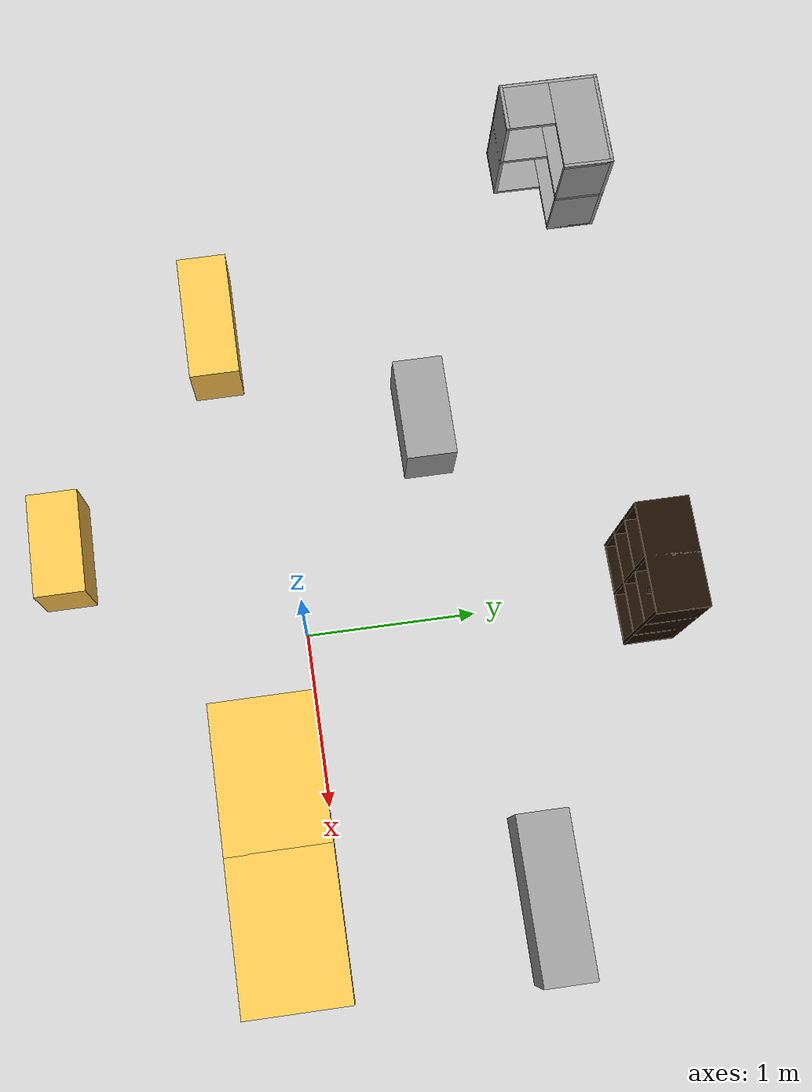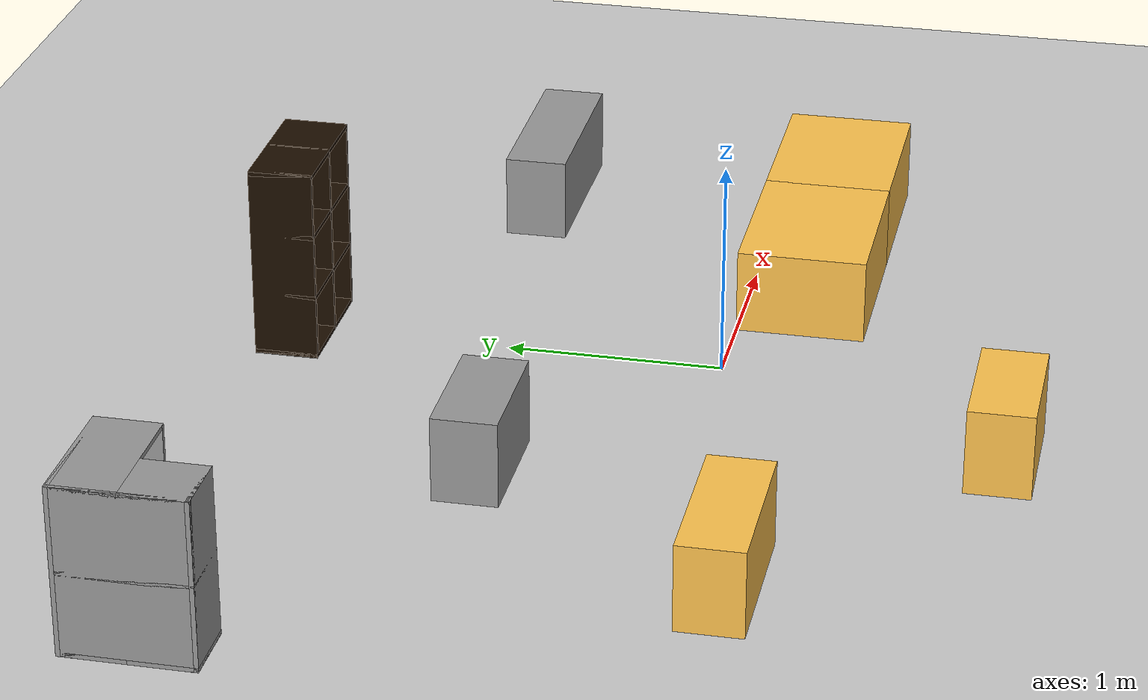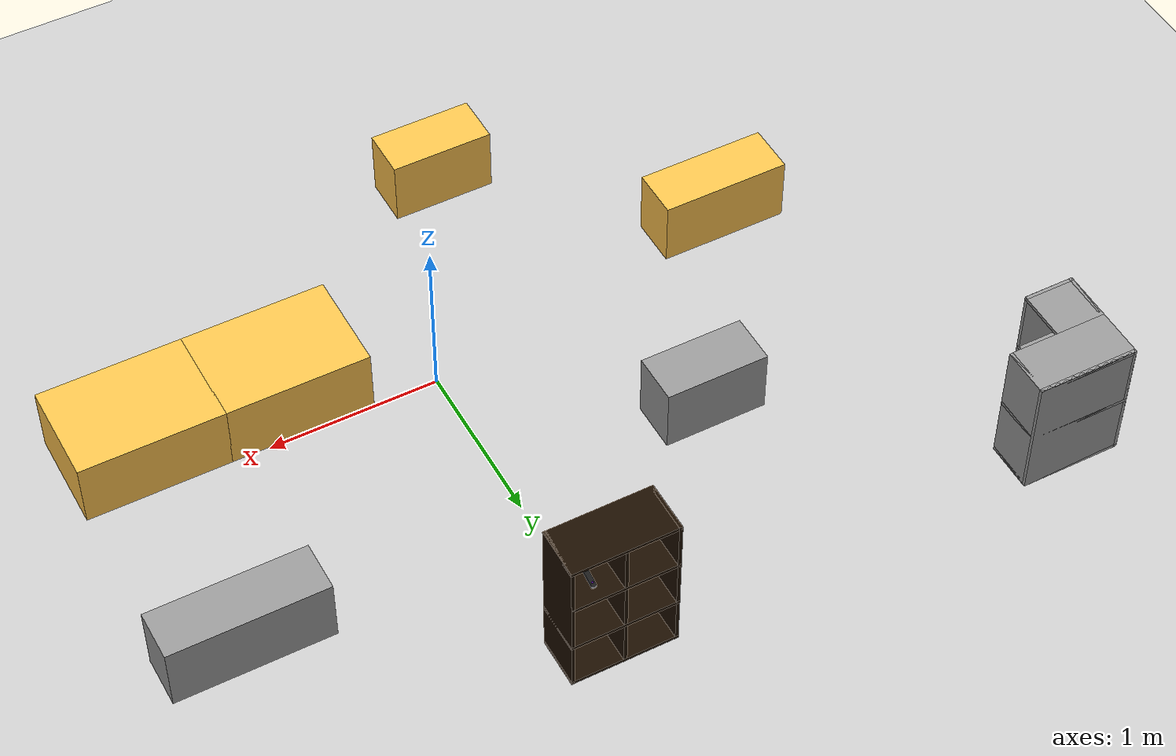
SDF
<sdf version="1.5">
 <world name="default">
  <scene><shadows>true</shadows></scene>
  <light name="sun" type="directional">
   <pose>0 0 10 0 -0 0</pose>
   <diffuse>0.8 0.8 0.8 1</diffuse>
   <specular>0.1 0.1 0.1 1</specular>
   <attenuation>
    <range>1000</range>
    <constant>0.9</constant>
    <linear>0.01</linear>
    <quadratic>0.001</quadratic>
   </attenuation>
   <direction>-0.5 0.5 -1</direction>
  </light>
  <physics type="ode">
   <max_step_size>0.001</max_step_size>
   <real_time_factor>1</real_time_factor>
   <real_time_update_rate>1000</real_time_update_rate>
   <gravity>0 0 -9.8</gravity>
  </physics>
  <include><uri>model://ground_plane</uri></include>
  <include><pose>-1.936710 -0.343286 0.013 0 0 -1.57</pose><uri>model://Box_15x30</uri></include>
  <include><pose>1.636 -0.3 0.013 0 0 0</pose><uri>model://Box_33x15</uri></include>
  <include><pose>0.8 -0.3 0.013 0 0 0</pose><uri>model://Box_33x15</uri></include>
  <include><pose>1.658951 1.141109 0.013 0 0 0</pose><uri>model://Box_36x15W</uri></include>
  <include><pose>0 1.986729 0.013002 0 0 0</pose><uri>model://6_Cube_StorageE</uri></include>
  <include><pose>-0.653226 -1.356719 0.013 0 0 0</pose><uri>model://Box_24x15M</uri></include>
  <include><pose>-1.184366 0.857670 0.013 0 0 0</pose><uri>model://Box_24x15W</uri></include>
  <include>
   <pose>-2.710050 1.858030 0.013 0 0 -1.574973</pose>
   <uri>model://Wall_Cabinet_Coin_24x30W</uri>
  </include>
  <include><pose>0.133016 1.972813 0.633002 0.00 0.00 -1.648960</pose><uri>model://Zed_dummy</uri></include>
 </world>
</sdf>

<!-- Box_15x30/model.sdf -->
<sdf version='1.6'>
  <model name='Box_15x30'>
    <link name='Wall'>
     <pose frame=''>0 0.0 0.1985 0 0 0</pose>
	<inertial>
	  <mass>5</mass>
	   <inertia>
	     <ixx>0.3089</ixx>
	     <iyy>0.1022</iyy>
	     <izz>0.2797</izz>
    	     <ixy>0</ixy>
	     <ixz>0</ixz>
	     <iyz>0</iyz>
	   </inertia>
	</inertial>
      <collision name='Wall_Collision'>
        <geometry>
          <box>
            <size>0.296 0.764 0.397</size>
          </box>
        </geometry>
      </collision>
      <visual name='Wall_Visual'>
        <geometry>
          <box>
            <size>0.296 0.764 0.397</size>
          </box>
        </geometry>
        <material>
          <script>
            <uri>file://media/materials/scripts/gazebo.material</uri>
            <name>Gazebo/Grey</name>
          </script>
          <ambient>1 0.764706 0.305882 1</ambient>
        </material>
      </visual>
     </link>

    <static>1</static>
  </model>
</sdf>

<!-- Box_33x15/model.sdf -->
<sdf version='1.6'>
  <model name='Box_33x15'>
    <link name='Wall'>
    <pose frame=''>0 0 0.1985 0 0 0</pose>
	<inertial>
	  <mass>5</mass>
	   <inertia>
	     <ixx>0.2157</ixx>
	     <iyy>0.3597</iyy>
	     <izz>0.4440</izz>
    	     <ixy>0</ixy>
	     <ixz>0</ixz>
	     <iyz>0</iyz>
	   </inertia>
	</inertial>
      <collision name='Wall_Collision'>
        <geometry>
          <box>
            <size>0.84 0.6 0.397 </size>
          </box>
        </geometry>
       </collision>
      <visual name='Wall_Visual'>
       <geometry>
          <box>
            <size>0.84 0.6 0.397 </size>
          </box>
        </geometry>
        <material>
          <script>
            <uri>file://media/materials/scripts/gazebo.material</uri>
            <name>Gazebo/Grey</name>
          </script>
          <ambient>1 0.764706 0.305882 1</ambient>
        </material>
      </visual>
     </link>

    <static>1</static>
  </model>
</sdf>

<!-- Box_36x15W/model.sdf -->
<sdf version='1.6'>
  <model name='Box_36x15W'>
     <link name='Wall'>
 	<pose frame=''>0 0 0.1985 0 0 0</pose>
	<inertial>
	  <mass>5</mass>
	   <inertia>
	     <ixx>0.1022</ixx>
	     <iyy>0.4107</iyy>
	     <izz>0.3815</izz>
    	     <ixy>0</ixy>
	     <ixz>0</ixz>
	     <iyz>0</iyz>
	   </inertia>
	</inertial>
      <collision name='Wall_Collision'>
        <geometry>
          <box>
            <size>0.91 0.296 0.397</size>
          </box>
        </geometry>
      </collision>
      <visual name='Wall_Visual'>
          <geometry>
          <box>
            <size>0.91 0.296 0.397</size>
          </box>
        </geometry>
        <material>
          <script>
            <uri>file://media/materials/scripts/gazebo.material</uri>
            <name>Gazebo/Grey</name>
          </script>
          <ambient>1 1 1 1</ambient>
        </material>
      </visual>
    </link>

    <static>1</static>
  </model>
</sdf>

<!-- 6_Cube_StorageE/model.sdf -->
<sdf version='1.6'>
  <model name='6_Cube_StorageE'>

    <link name='Wall_0'>
    <pose frame=''>0 0 0.01 0 -0 0</pose>
	<inertial>
	  <mass>1.6201</mass>
	   <inertia>
	     <ixx>0.0119</ixx>
	     <iyy>0.0631</iyy>
	     <izz>0.0513</izz>
    	     <ixy>0</ixy>
	     <ixz>0</ixz>
	     <iyz>0</iyz>
	   </inertia>
	</inertial>
      <collision name='Wall_0_Collision'>
        <geometry>
          <box>
            <size>0.616 0.296 0.02</size>
          </box>
        </geometry>
      </collision>
      <visual name='Wall_0_Visual'>
        <geometry>
          <box>
            <size>0.616 0.296 0.02</size>
          </box>
        </geometry>
        <material>
          <script>
            <uri>file://media/materials/scripts/gazebo.material</uri>
            <name>Gazebo/Grey</name>
          </script>
          <ambient>0.105882 0.0509804 0 1</ambient>
        </material>
      </visual>
   </link>

     <joint type="fixed" name="0_2">
      <pose frame=''>-0.308 0 0 0 0 0</pose>
         <parent>Wall_2</parent>
  	 <child>Wall_0</child>
	 <axis>
	   <xyz>1 0 0</xyz>
	 </axis>
       </joint>

  <joint type="fixed" name="0_12">
      <pose frame=''>0 0 0 0 0 0</pose>
         <parent>Wall_12</parent>
  	 <child>Wall_0</child>
	 <axis>
	   <xyz>0 0 1</xyz>
	 </axis>
       </joint>

  <joint type="fixed" name="0_4">
      <pose frame=''>0.308 0 0 0 0 0</pose>
         <parent>Wall_4</parent>
  	 <child>Wall_0</child>
	 <axis>
	   <xyz>1 0 0</xyz>
	 </axis>
       </joint>

    <link name='Wall_10'>
      <pose frame=''>0 0 0.610 0 0 0</pose>
	<inertial>
	  <mass>1.6201</mass>
	   <inertia>
	     <ixx>0.0119</ixx>
	     <iyy>0.0631</iyy>
	     <izz>0.0513</izz>
    	     <ixy>0</ixy>
	     <ixz>0</ixz>
	     <iyz>0</iyz>
	   </inertia>
	</inertial>
      <collision name='Wall_10_Collision'>
        <geometry>
          <box>
            <size>0.616 0.296 0.02 </size>
          </box>
        </geometry>
      </collision>
      <visual name='Wall_10_Visual'>
          <geometry>
          <box>
            <size>0.616 0.296 0.02</size>
          </box>
        </geometry>
        <material>
          <script>
            <uri>file://media/materials/scripts/gazebo.material</uri>
            <name>Gazebo/Grey</name>
          </script>
          <ambient>0.105882 0.0509804 0 1</ambient>
        </material>
      </visual>
    </link>

     <joint type="fixed" name="10_2">
      <pose frame=''>-0.308 0 0 0 0 0</pose>
         <parent>Wall_2</parent>
  	 <child>Wall_10</child>
	 <axis>
	   <xyz>1 0 0</xyz>
	 </axis>
       </joint>

  <joint type="fixed" name="10_12">
      <pose frame=''>0 0 0 0 0 0</pose>
         <parent>Wall_12</parent>
  	 <child>Wall_10</child>
	 <axis>
	   <xyz>0 0 1</xyz>
	 </axis>
       </joint>

  <joint type="fixed" name="10_4">
      <pose frame=''>0.308 0 0 0 0 0</pose>
         <parent>Wall_4</parent>
  	 <child>Wall_10</child>
	 <axis>
	   <xyz>1 0 0</xyz>
	 </axis>
       </joint>

    <link name='Wall_12'>
  <pose frame=''>0 0 0.4575 0 0 0</pose>
	<inertial>
	  <mass>2.4065</mass>
	   <inertia>
	     <ixx>0.0177</ixx>
	     <iyy>0.1855</iyy>
	     <izz>0.1680</izz>
    	     <ixy>0</ixy>
	     <ixz>0</ixz>
	     <iyz>0</iyz>
	   </inertia>
	</inertial>
      <collision name='Wall_12_Collision'>
        <geometry>
          <box>
            <size>0.02 0.296 0.915</size>
          </box>
        </geometry>
      </collision>
      <visual name='Wall_12_Visual'>
         <geometry>
          <box>
            <size>0.02 0.296 0.915</size>
          </box>
        </geometry>
        <material>
          <script>
            <uri>file://media/materials/scripts/gazebo.material</uri>
            <name>Gazebo/Grey</name>
          </script>
          <ambient>0.105882 0.0509804 0 1</ambient>
        </material>
      </visual>
    </link>

    <link name='Wall_2'>
      <pose frame=''>-0.298 0 0.4575 0 0 0</pose>
	<inertial>
	  <mass>2.4065</mass>
	   <inertia>
	     <ixx>0.0177</ixx>
	     <iyy>0.1855</iyy>
	     <izz>0.1680</izz>
    	     <ixy>0</ixy>
	     <ixz>0</ixz>
	     <iyz>0</iyz>
	   </inertia>
	</inertial>
      <collision name='Wall_2_Collision'>
        <geometry>
          <box>
            <size>0.02 0.296 0.915</size>
          </box>
        </geometry>
      </collision>
      <visual name='Wall_2_Visual'>
        <geometry>
          <box>
            <size>0.02 0.296 0.915</size>
          </box>
        </geometry>
        <material>
          <script>
            <uri>file://media/materials/scripts/gazebo.material</uri>
            <name>Gazebo/Grey</name>
          </script>
          <ambient>0.105882 0.0509804 0 1</ambient>
        </material>
      </visual>
    </link>

    <link name='Wall_4'>
      <pose frame=''>0.298 0 0.4575 0 0 0</pose>
	<inertial>
	  <mass>2.4065</mass>
	   <inertia>
	     <ixx>0.0177</ixx>
	     <iyy>0.1855</iyy>
	     <izz>0.1680</izz>
    	     <ixy>0</ixy>
	     <ixz>0</ixz>
	     <iyz>0</iyz>
	   </inertia>
	</inertial>
      <collision name='Wall_4_Collision'>
        <geometry>
          <box>
            <size>0.02 0.296 0.915</size>
          </box>
        </geometry>
      </collision>
      <visual name='Wall_4_Visual'>
        <geometry>
          <box>
            <size>0.02 0.296 0.915</size>
          </box>
        </geometry>
        <material>
          <script>
            <uri>file://media/materials/scripts/gazebo.material</uri>
            <name>Gazebo/Grey</name>
          </script>
          <ambient>0.105882 0.0509804 0 1</ambient>
        </material>
      </visual>
    </link>

    <link name='Wall_6'>
     <pose frame=''>0 0 0.905 0 0 0</pose>
	<inertial>
	  <mass>1.6201</mass>
	   <inertia>
	     <ixx>0.0119</ixx>
	     <iyy>0.0631</iyy>
	     <izz>0.0513</izz>
    	     <ixy>0</ixy>
	     <ixz>0</ixz>
	     <iyz>0</iyz>
	   </inertia>
	</inertial>
      <collision name='Wall_6_Collision'>
        <geometry>
          <box>
            <size>0.616 0.296 0.02</size>
          </box>
        </geometry>
       </collision>
      <visual name='Wall_6_Visual'>
        <geometry>
          <box>
            <size>0.616 0.296 0.02</size>
          </box>
        </geometry>
        <material>
          <script>
            <uri>file://media/materials/scripts/gazebo.material</uri>
            <name>Gazebo/Grey</name>
          </script>
          <ambient>0.105882 0.0509804 0 1</ambient>
        </material>
      </visual>
     </link>

     <joint type="fixed" name="6_2">
      <pose frame=''>-0.308 0 0 0 0 0</pose>
         <parent>Wall_2</parent>
  	 <child>Wall_6</child>
	 <axis>
	   <xyz>2 0 0</xyz>
	 </axis>
       </joint>

  <joint type="fixed" name="6_12">
      <pose frame=''>0 0 0 0 0 0</pose>
         <parent>Wall_12</parent>
  	 <child>Wall_6</child>
	 <axis>
	   <xyz>0 0 1</xyz>
	 </axis>
       </joint>

  <joint type="fixed" name="6_4">
      <pose frame=''>0.308 0 0 0 0 0</pose>
         <parent>Wall_4</parent>
  	 <child>Wall_6</child>
	 <axis>
	   <xyz>1 0 0</xyz>
	 </axis>
       </joint>

    <link name='Wall_8'>
    <pose frame=''>0 0 0.305 0 0 0</pose>
	<inertial>
	  <mass>1.6201</mass>
	   <inertia>
	     <ixx>0.0119</ixx>
	     <iyy>0.0631</iyy>
	     <izz>0.0513</izz>
    	     <ixy>0</ixy>
	     <ixz>0</ixz>
	     <iyz>0</iyz>
	   </inertia>
	</inertial>
      <collision name='Wall_8_Collision'>
        <geometry>
          <box>
            <size>0.616 0.296 0.02</size>
          </box>
        </geometry>
       </collision>
      <visual name='Wall_8_Visual'>
        <geometry>
          <box>
            <size>0.616 0.296 0.02</size>
          </box>
        </geometry>
        <material>
          <script>
            <uri>file://media/materials/scripts/gazebo.material</uri>
            <name>Gazebo/Grey</name>
          </script>
          <ambient>0.105882 0.0509804 0 1</ambient>
        </material>
      </visual>
      </link>

     <joint type="fixed" name="8_2">
      <pose frame=''>-0.308 0 0 0 0 0</pose>
         <parent>Wall_2</parent>
  	 <child>Wall_8</child>
	 <axis>
	   <xyz>1 0 0</xyz>
	 </axis>
       </joint>

  <joint type="fixed" name="8_12">
      <pose frame=''>0 0 0 0 0 0</pose>
         <parent>Wall_12</parent>
  	 <child>Wall_8</child>
	 <axis>
	   <xyz>0 0 1</xyz>
	 </axis>
       </joint>

  <joint type="fixed" name="8_4">
      <pose frame=''>0.308 0 0 0 0 0</pose>
         <parent>Wall_4</parent>
  	 <child>Wall_8</child>
	 <axis>
	   <xyz>1 0 0</xyz>
	 </axis>
       </joint>

    <static>1</static>
  </model>
</sdf>

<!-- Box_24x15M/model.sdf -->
<sdf version='1.6'>
  <model name='Box_24x15M'>
    <link name='Wall'>
	<pose frame=''>0 0 0.1985 0 -0 0</pose>
	<inertial>
	  <mass>5</mass>
	   <inertia>
	     <ixx>0.1022</ixx>
	     <iyy>0.2197</iyy>
	     <izz>0.1905</izz>
    	     <ixy>0</ixy>
	     <ixz>0</ixz>
	     <iyz>0</iyz>
	   </inertia>
	</inertial>
      <collision name='Wall_Collision'>
        <geometry>
          <box>
            <size>0.608 0.296 0.397 </size>
          </box>
        </geometry>

      </collision>
      <visual name='Wall_Visual'>

        <geometry>
          <box>
            <size>0.608 0.296 0.397</size>
          </box>
        </geometry>
       <material>
          <script>
            <uri>file://media/materials/scripts/gazebo.material</uri>
            <name>Gazebo/Grey</name>
          </script>
          <ambient>1 0.764706 0.305882 1</ambient>
        </material>
      </visual>
    </link>

    <static>1</static>
  </model>
</sdf>

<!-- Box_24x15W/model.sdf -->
<sdf version='1.6'>
  <model name='Box_24x15W'>
    <link name='Wall'>
	<pose frame=''>0 0 0.1985 0 0 0</pose>
	<inertial>
	  <mass>5</mass>
	   <inertia>
	     <ixx>0.1022</ixx>
	     <iyy>0.2197</iyy>
	     <izz>0.1905</izz>
    	     <ixy>0</ixy>
	     <ixz>0</ixz>
	     <iyz>0</iyz>
	   </inertia>
	</inertial>
      <collision name='Wall_Collision'>
        <geometry>
          <box>
            <size>0.608 0.296 0.397 </size>
          </box>
        </geometry>

      </collision>
      <visual name='Wall_Visual'>

        <geometry>
          <box>
            <size>0.608 0.296 0.397</size>
          </box>
        </geometry>
        <material>
          <script>
            <uri>file://media/materials/scripts/gazebo.material</uri>
            <name>Gazebo/Grey</name>
          </script>
          <ambient>1 1 1 1</ambient>
        </material>
      </visual>
     </link>

    <static>1</static>
  </model>
</sdf>

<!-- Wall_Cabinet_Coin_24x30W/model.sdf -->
<sdf version='1.6'>
   <model name='Wall_Cabinet_Coin_24x30W'>
    <link name='Wall_10'>
     <pose frame=''>0.286 -0.148 0.384 0 0 0</pose>
	<inertial>
	  <mass>2.1259</mass>
	   <inertia>
	     <ixx>0.0158</ixx>
	     <iyy>0.1202</iyy>
	     <izz>0.1046</izz>
    	     <ixy>0</ixy>
	     <ixz>0</ixz>
	     <iyz>0</iyz>
	   </inertia>
	</inertial>
      <collision name='Wall_10_Collision'>
        <geometry>
          <box>
            <size> 0.02 0.296 0.768</size>
          </box>
        </geometry>
      </collision>
      <visual name='Wall_10_Visual'>
        <geometry>
          <box>
            <size>0.02 0.296 0.768</size>
          </box>
        </geometry>
        <material>
          <script>
            <uri>file://media/materials/scripts/gazebo.material</uri>
            <name>Gazebo/Grey</name>
          </script>
          <ambient>1 1 1 1</ambient>
        </material>
      </visual>
    </link>

     <joint type="fixed" name="10_16">
      <pose frame=''> 0 0 -0.374 0 0 0</pose>
         <parent>Wall_16</parent>
  	 <child>Wall_10</child>
	 <axis>
	   <xyz>1 0 0</xyz>
	 </axis>
       </joint>
   <joint type="fixed" name="10_14">
          <pose frame=''>0 0 0 0 0 0</pose>
         <parent>Wall_14</parent>
  	 <child>Wall_10</child>
	 <axis>
	   <xyz>1 0 0</xyz>
	 </axis>
       </joint>

   <joint type="fixed" name="10_12">
      <pose frame=''>0 0 0.374 0 0 0</pose>
         <parent>Wall_12</parent>
  	 <child>Wall_10</child>
	 <axis>
	   <xyz>1 0 0</xyz>
	 </axis>
       </joint>

   <joint type="fixed" name="10_29">
      <pose frame=''>0 -0.148 0 0 0 0</pose>
         <parent>Wall_29</parent>
  	 <child>Wall_10</child>
	 <axis>
	   <xyz>1 0 0</xyz>
	 </axis>
       </joint>

    <link name='Wall_12'>
   <pose frame=''>0.148 -0.148 0.758 0 0 0</pose>
	<inertial>
	  <mass>0.8802</mass>
	   <inertia>
	     <ixx>0.0065</ixx>
	     <iyy>0.0139</iyy>
	     <izz>0.0074</izz>
    	     <ixy>0</ixy>
	     <ixz>0</ixz>
	     <iyz>0</iyz>
	   </inertia>
	</inertial>
      <collision name='Wall_12_Collision'>
        <geometry>
          <box>
            <size>0.296 0.296 0.02</size>
          </box>
        </geometry>
      </collision>
      <visual name='Wall_12_Visual'>
        <geometry>
          <box>
            <size>0.296 0.296 0.02</size>
          </box>
        </geometry>
        <material>
          <script>
            <uri>file://media/materials/scripts/gazebo.material</uri>
            <name>Gazebo/Grey</name>
          </script>
          <ambient>1 1 1 1</ambient>
        </material>
      </visual>
     </link>

   <joint type="fixed" name="12_29">
      <pose frame=''>0 -0.148 0 0 0 0</pose>
         <parent>Wall_29</parent>
  	 <child>Wall_12</child>
	 <axis>
	   <xyz>0 0 1</xyz>
	 </axis>
       </joint>

    <link name='Wall_14'>
      <pose frame=''>0.148 -0.148 0.384 0 0 0</pose>
	<inertial>
	  <mass>0.8802</mass>
	   <inertia>
	     <ixx>0.0065</ixx>
	     <iyy>0.0139</iyy>
	     <izz>0.0074</izz>
    	     <ixy>0</ixy>
	     <ixz>0</ixz>
	     <iyz>0</iyz>
	   </inertia>
	</inertial>
      <collision name='Wall_14_Collision'>
        <geometry>
          <box>
            <size>0.296 0.296 0.02</size>
          </box>
        </geometry>
      </collision>
      <visual name='Wall_14_Visual'>
        <geometry>
          <box>
            <size>0.296 0.296 0.02</size>
          </box>
        </geometry>
        <material>
          <script>
            <uri>file://media/materials/scripts/gazebo.material</uri>
            <name>Gazebo/Grey</name>
          </script>
          <ambient>1 1 1 1</ambient>
        </material>
      </visual>
    </link>

   <joint type="fixed" name="14_29">
      <pose frame=''>0 -0.148 0 0 0 0</pose>
         <parent>Wall_29</parent>
  	 <child>Wall_14</child>
	 <axis>
	   <xyz>0 1 0</xyz>
	 </axis>
       </joint>

    <link name='Wall_16'>
      <pose frame=''>0.148 -0.148 0.01 0 0 0</pose>
	<inertial>
	  <mass>0.8802</mass>
	   <inertia>
	     <ixx>0.0065</ixx>
	     <iyy>0.0139</iyy>
	     <izz>0.0074</izz>
    	     <ixy>0</ixy>
	     <ixz>0</ixz>
	     <iyz>0</iyz>
	   </inertia>
	</inertial>
      <collision name='Wall_16_Collision'>
        <geometry>
          <box>
            <size>0.296 0.296 0.02 </size>
          </box>
        </geometry>
       </collision>
      <visual name='Wall_16_Visual'>
         <geometry>
          <box>
            <size>0.296 0.296 0.02</size>
          </box>
        </geometry>
        <material>
          <script>
            <uri>file://media/materials/scripts/gazebo.material</uri>
            <name>Gazebo/Grey</name>
          </script>
          <ambient>1 1 1 1</ambient>
        </material>
      </visual>
    </link>

   <joint type="fixed" name="16_29">
      <pose frame=''>0  -0.148 0 0 0 0</pose>
         <parent>Wall_29</parent>
  	 <child>Wall_16</child>
	 <axis>
	   <xyz>0 1 0</xyz>
	 </axis>
       </joint>

    <link name='Wall_18'>
      <pose frame=''>-0.148 0 0.01 0 0 0</pose>
	<inertial>
	  <mass>1.6525</mass>
	   <inertia>
	     <ixx>0.0491</ixx>
	     <iyy>0.0613</iyy>
	     <izz>0.0123</izz>
    	     <ixy>0</ixy>
	     <ixz>0</ixz>
	     <iyz>0</iyz>
	   </inertia>
	</inertial>
      <collision name='Wall_18_Collision'>
        <geometry>
          <box>
            <size>0.296 0.592 0.02</size>
          </box>
        </geometry>
        </collision>
      <visual name='Wall_18_Visual'>
        <geometry>
          <box>
            <size>0.296 0.592 0.02</size>
          </box>
        </geometry>
        <material>
          <script>
            <uri>file://media/materials/scripts/gazebo.material</uri>
            <name>Gazebo/Grey</name>
          </script>
          <ambient>1 1 1 1</ambient>
        </material>
      </visual>
    </link>

  <joint type="fixed" name="18_16">
      <pose frame=''> 0.148 -0.148 0 0 0 0</pose>
         <parent>Wall_16</parent>
  	 <child>Wall_18</child>
	 <axis>
	   <xyz>1 0 0</xyz>
	 </axis>
       </joint>

   <joint type="fixed" name="18_29">
          <pose frame=''>0 -0.296 0 0 0 0</pose>
         <parent>Wall_29</parent>
  	 <child>Wall_18</child>
	 <axis>
	   <xyz>0 1 0</xyz>
	 </axis>
       </joint>

   <joint type="fixed" name="18_27">
      <pose frame=''>-0.148 0 0 0 0 0</pose>
         <parent>Wall_27</parent>
  	 <child>Wall_18</child>
	 <axis>
	   <xyz>1 0 0</xyz>
	 </axis>
       </joint>

   <joint type="fixed" name="18_30">
      <pose frame=''>0 0.296 0 0 0 0</pose>
         <parent>Wall_30</parent>
  	 <child>Wall_18</child>
	 <axis>
	   <xyz>0 1 0</xyz>
	 </axis>
       </joint>

    <link name='Wall_20'>
      <pose frame=''>-0.148 0 0.384 0 0 0</pose>
	<inertial>
	  <mass>1.6525</mass>
	   <inertia>
	     <ixx>0.0491</ixx>
	     <iyy>0.0613</iyy>
	     <izz>0.0123</izz>
    	     <ixy>0</ixy>
	     <ixz>0</ixz>
	     <iyz>0</iyz>
	   </inertia>
	</inertial>
      <collision name='Wall_20_Collision'>
        <geometry>
          <box>
            <size>0.296 0.592 0.02</size>
          </box>
        </geometry>
      </collision>
      <visual name='Wall_20_Visual'>
        <geometry>
          <box>
            <size>0.296 0.592 0.02</size>
          </box>
        </geometry>
        <material>
          <script>
            <uri>file://media/materials/scripts/gazebo.material</uri>
            <name>Gazebo/Grey</name>
          </script>
          <ambient>1 1 1 1</ambient>
        </material>
      </visual>
    </link>

<joint type="fixed" name="20_14">
      <pose frame=''> 0.148 -0.148 0 0 0 0</pose>
         <parent>Wall_14</parent>
  	 <child>Wall_20</child>
	 <axis>
	   <xyz>1 0 0</xyz>
	 </axis>
       </joint>

   <joint type="fixed" name="20_29">
          <pose frame=''>0  -0.296 0 0 0 0</pose>
         <parent>Wall_29</parent>
  	 <child>Wall_20</child>
	 <axis>
	   <xyz>0 1 0</xyz>
	 </axis>
       </joint>

   <joint type="fixed" name="20_27">
      <pose frame=''>-0.148 0 0 0 0 0</pose>
         <parent>Wall_27</parent>
  	 <child>Wall_20</child>
	 <axis>
	   <xyz>1 0 0</xyz>
	 </axis>
       </joint>

   <joint type="fixed" name="20_30">
      <pose frame=''>0 0.296 0 0 0 0</pose>
         <parent>Wall_30</parent>
  	 <child>Wall_20</child>
	 <axis>
	   <xyz>0 1 0</xyz>
	 </axis>
       </joint>

    <link name='Wall_22'>
      <pose frame=''>-0.148 0 0.758 0 0 0</pose>
	<inertial>
	  <mass>1.6525</mass>
	   <inertia>
	     <ixx>0.0491</ixx>
	     <iyy>0.0613</iyy>
	     <izz>0.0123</izz>
    	     <ixy>0</ixy>
	     <ixz>0</ixz>
	     <iyz>0</iyz>
	   </inertia>
	</inertial>
      <collision name='Wall_22_Collision'>
        <geometry>
          <box>
            <size>0.296 0.592 0.02</size>
          </box>
        </geometry>
      </collision>
      <visual name='Wall_22_Visual'>
        <geometry>
          <box>
            <size>0.296 0.592 0.02</size>
          </box>
        </geometry>
        <material>
          <script>
            <uri>file://media/materials/scripts/gazebo.material</uri>
            <name>Gazebo/Grey</name>
          </script>
          <ambient>1 1 1 1</ambient>
        </material>
      </visual>
    </link>

<joint type="fixed" name="22_12">
      <pose frame=''> 0.148 -0.148 0 0 0 0</pose>
         <parent>Wall_12</parent>
  	 <child>Wall_22</child>
	 <axis>
	   <xyz>1 0 0</xyz>
	 </axis>
       </joint>

   <joint type="fixed" name="22_29">
          <pose frame=''>0 -0.296 0 0 0 0</pose>
         <parent>Wall_29</parent>
  	 <child>Wall_22</child>
	 <axis>
	   <xyz>0 1 0</xyz>
	 </axis>
       </joint>

   <joint type="fixed" name="22_27">
      <pose frame=''>-0.148 0 0 0 0 0</pose>
         <parent>Wall_27</parent>
  	 <child>Wall_22</child>
	 <axis>
	   <xyz>1 0 0</xyz>
	 </axis>
       </joint>

   <joint type="fixed" name="22_30">
      <pose frame=''>0 0.296 0 0 0 0</pose>
         <parent>Wall_30</parent>
  	 <child>Wall_22</child>
	 <axis>
	   <xyz>0 1 0</xyz>
	 </axis>
       </joint>

    <link name='Wall_27'>
      <pose frame=''>-0.286 0 0.384 0 0 0</pose>
	<inertial>
	  <mass>4.2589</mass>
	   <inertia>
	     <ixx>0.1266</ixx>
	     <iyy>0.3358</iyy>
	     <izz>0.2095</izz>
    	     <ixy>0</ixy>
	     <ixz>0</ixz>
	     <iyz>0</iyz>
	   </inertia>
	</inertial>
      <collision name='Wall_27_Collision'>
        <geometry>
          <box>
            <size>0.02 0.592 0.768</size>
          </box>
        </geometry>
      </collision>
      <visual name='Wall_27_Visual'>
        <geometry>
          <box>
            <size>0.02 0.592 0.768</size>
          </box>
        </geometry>
        <material>
          <script>
            <uri>file://media/materials/scripts/gazebo.material</uri>
            <name>Gazebo/Grey</name>
          </script>
          <ambient>1 1 1 1</ambient>
        </material>
      </visual>
    </link>

   <joint type="fixed" name="27_30">
      <pose frame=''>0 0.296 0 0 0 0</pose>
         <parent>Wall_30</parent>
  	 <child>Wall_27</child>
	 <axis>
	   <xyz>0 1 0</xyz>
	 </axis>
       </joint>

    <link name='Wall_29'>
     <pose frame=''>0 -0.286 0.384 0 0 0</pose>
	<inertial>
	  <mass>4.3176</mass>
	   <inertia>
	     <ixx>0.1340</ixx>
	     <iyy>0.2091</iyy>
	     <izz>0.3428</izz>
    	     <ixy>0</ixy>
	     <ixz>0</ixz>
	     <iyz>0</iyz>
	   </inertia>
	</inertial>
      <collision name='Wall_29_Collision'>
        <geometry>
          <box>
            <size> 0.592 0.02 0.768</size>
          </box>
        </geometry>
       </collision>
      <visual name='Wall_29_Visual'>
         <geometry>
          <box>
            <size>0.592 0.02 0.768</size>
          </box>
        </geometry>
        <material>
          <script>
            <uri>file://media/materials/scripts/gazebo.material</uri>
            <name>Gazebo/Grey</name>
          </script>
          <ambient>1 1 1 1</ambient>
        </material>
      </visual>
     </link>

 <link name='Wall_30'>
      <pose frame=''>-0.148 0.286 0.384 0 0 0</pose>
	<inertial>
	  <mass>2.1093</mass>
	   <inertia>
	     <ixx>0.1021</ixx>
	     <iyy>0.0157</iyy>
	     <izz>0.1177</izz>
    	     <ixy>0</ixy>
	     <ixz>0</ixz>
	     <iyz>0</iyz>
	   </inertia>
	</inertial>
      <collision name='Wall_30_Collision'>
        <geometry>
          <box>
            <size>0.296  0.02 0.768</size>
          </box>
        </geometry>
       </collision>
      <visual name='Wall_30_Visual'>
        <geometry>
          <box>
            <size>0.296  0.02 0.768</size>
          </box>
        </geometry>
        <material>
          <script>
            <uri>file://media/materials/scripts/gazebo.material</uri>
            <name>Gazebo/Grey</name>
          </script>
          <ambient>1 1 1 1</ambient>
        </material>
      </visual>
    </link>

    <static>1</static>
  </model>
</sdf>

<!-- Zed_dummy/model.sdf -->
<sdf version='1.5'>
  <model name='Zed_dummy'>
  <pose>0 0 0.008247 -1.57 0 -1.57</pose>
    <link name='frame'>
<inertial>
 	 <mass>0.342</mass>
	   <inertia>
	     <ixx>0.000056687</ixx>
	     <iyy>0.00089846</iyy>
	     <izz>0.00090385</izz>
    	     <ixy>0</ixy>
	     <ixz>0</ixz>
	     <iyz>0</iyz>
	   </inertia>
</inertial>
	<pose frame=''>0 0.008 -0.018575 0 -0 0</pose>
      <visual name='visual'>
         <geometry>
          <mesh>
            <uri>model://Zed_dummy/meshes/frame.dae</uri>
            <scale>1 1 1</scale>
          </mesh>
        </geometry>
     <material>
          <script>
            <uri>model://Zed_dummy/materials/scripts</uri>
            <uri>model://Zed_dummy/materials/textures</uri>
            <name>silver_zed</name>
          </script>
        </material>
        <cast_shadows>1</cast_shadows>
        <transparency>0</transparency>
      </visual>

      <collision name='collision'>
	<pose frame=''>0 -0.008 0.017575 0 -0 0</pose>
       	  <geometry>
	    <box>
	      <size> 0.175 0.029 0.035 </size>
	    </box>
	  </geometry>
       </collision>
    </link>

    <link name='lenses'>
      <pose frame=''>0 0.008 -0.018575 0 -0 0</pose>
 	<inertial>
	<pose frame=''>0 -0.005 0.015 0 -0 0</pose>
	  <mass>0.00001</mass>
	   <inertia>
	     <ixx>0</ixx>
	     <iyy>0</iyy>
	     <izz>0</izz>
    	     <ixy>0</ixy>
	     <ixz>0</ixz>
	     <iyz>0</iyz>
	   </inertia>
	</inertial>
        <visual name='visual'>
              <geometry>
          <mesh>
            <uri>model://Zed_dummy/meshes/lenses.dae</uri>
            <scale>1 1 1</scale>
          </mesh>
        </geometry>
             <material>
          <lighting>1</lighting>
            <ambient>0.25 0 0.5 1</ambient>
          <diffuse>0.45 0 0.9 1</diffuse>
          <specular>0.01 0.01 0.01 1</specular>
          <emissive>0 0 0 1</emissive>
        </material>
        <cast_shadows>1</cast_shadows>
        <transparency>0.5</transparency>
      </visual>
      <collision name='collision'>
        <geometry>
    	 <box>
	      <size> 0.0001 0.0001 0.0001 </size>
	    </box>
        </geometry>
       </collision>

    </link>
    <link name='panel_up'>
     <pose frame=''>0 0.008 0.035727 0 -0 0</pose>
      <inertial>
	<pose frame=''>0 -0.005 -0.02 0 -0 0</pose>
	  <mass>0.00001</mass>
	   <inertia>
	     <ixx>0.0</ixx>
	     <iyy>0.0</iyy>
	     <izz>0.00</izz>
    	     <ixy>0</ixy>
	     <ixz>0</ixz>
	     <iyz>0</iyz>
	   </inertia>
	</inertial>
         <visual name='visual'>
         <geometry>
          <mesh>
            <uri>model://Zed_dummy/meshes/panel.dae</uri>
            <scale>1 1 1</scale>
          </mesh>
        </geometry>
         <material>
          <lighting>1</lighting>
          <ambient>0 0 0 1</ambient>
          <diffuse>0.1 0.1 0.1 1</diffuse>
          <specular>0.01 0.01 0.01 1</specular>
          <emissive>0 0 0 1</emissive>
          <shader type='vertex'>
            <normal_map>__default__</normal_map>
          </shader>
        </material>
        <cast_shadows>1</cast_shadows>
        <transparency>0</transparency>
      </visual>
      <collision name='collision'>

        <geometry>
           <box>
	     <size> 0.0001 0.0001 0.0001 </size>
	    </box>
        </geometry>
       </collision>
    </link>

    <link name='panel_down'>
 	<pose frame=''>0 0.008 0.001099 0 -0 0</pose>
      <inertial>
<pose frame=''>0 -0.005 -0.02 0 -0 0</pose>
         <mass>0.00001</mass>
	   <inertia>
	     <ixx>0</ixx>
	     <iyy>0</iyy>
	     <izz>0</izz>
    	     <ixy>0</ixy>
	     <ixz>0</ixz>
	     <iyz>0</iyz>
	   </inertia>
	</inertial>
        <visual name='visual'>
        <geometry>
          <mesh>
            <uri>model://Zed_dummy/meshes/panel.dae</uri>
            <scale>1 1 1</scale>
          </mesh>
        </geometry>
        <material>
          <lighting>1</lighting>
          <ambient>0 0 0 1</ambient>
          <diffuse>0.1 0.1 0.1 1</diffuse>
          <specular>0.01 0.01 0.01 1</specular>
          <emissive>0 0 0 1</emissive>
          <shader type='vertex'>
            <normal_map>__default__</normal_map>
          </shader>
        </material>
        <cast_shadows>1</cast_shadows>
        <transparency>0</transparency>
      </visual>
      <collision name='collision'>

        <geometry>
          <box>
	       <size> 0.0001 0.0001 0.0001 </size>
	    </box>
        </geometry>
       </collision>
    </link>

     <joint type="fixed" name="lenses_joint_left">
      <pose>-0.06 0 0.015 0 0 0</pose>
      <child>lenses</child>
      <parent>frame</parent>
      <axis>
        <xyz>0 0 1</xyz>
         <use_parent_model_frame>true</use_parent_model_frame>
      </axis>
     </joint>

     <joint type="fixed" name="lenses_joint_right">
      <pose> 0.06 0 0.015 0 0 0</pose>
      <child>lenses</child>
      <parent>frame</parent>
      <axis>
        <xyz>0 0 1</xyz>
         <use_parent_model_frame>true</use_parent_model_frame>
      </axis>
     </joint>

    <joint type="fixed" name="panel_up_left">
      <pose>0.06 0 -0.015 0 0 0</pose>
      <child>panel_up</child>
      <parent>frame</parent>
      <axis>
        <xyz>0 0 1</xyz>
         <use_parent_model_frame>true</use_parent_model_frame>
      </axis>
     </joint>

    <joint type="fixed" name="panel_up_right">
      <pose>-0.06 0 -0.015 0 0 0</pose>
      <child>panel_up</child>
      <parent>frame</parent>
      <axis>
        <xyz>0 0 1</xyz>
         <use_parent_model_frame>true</use_parent_model_frame>
      </axis>
     </joint>

    <joint type="fixed" name="panel_down_left">
     <pose>-0.06 0 0 0 0 0</pose>
      <child>panel_down</child>
      <parent>frame</parent>
      <axis>
        <xyz>0 0 1</xyz>
         <use_parent_model_frame>true</use_parent_model_frame>
      </axis>
     </joint>

    <joint type="fixed" name="panel_down_right">
     <pose>0.06 0 0 0 0 0</pose>
      <child>panel_down</child>
      <parent>frame</parent>
      <axis>
        <xyz>0 0 1</xyz>
         <use_parent_model_frame>true</use_parent_model_frame>
      </axis>
     </joint>
    <static>1</static>
    <allow_auto_disable>1</allow_auto_disable>
  </model>
</sdf>
